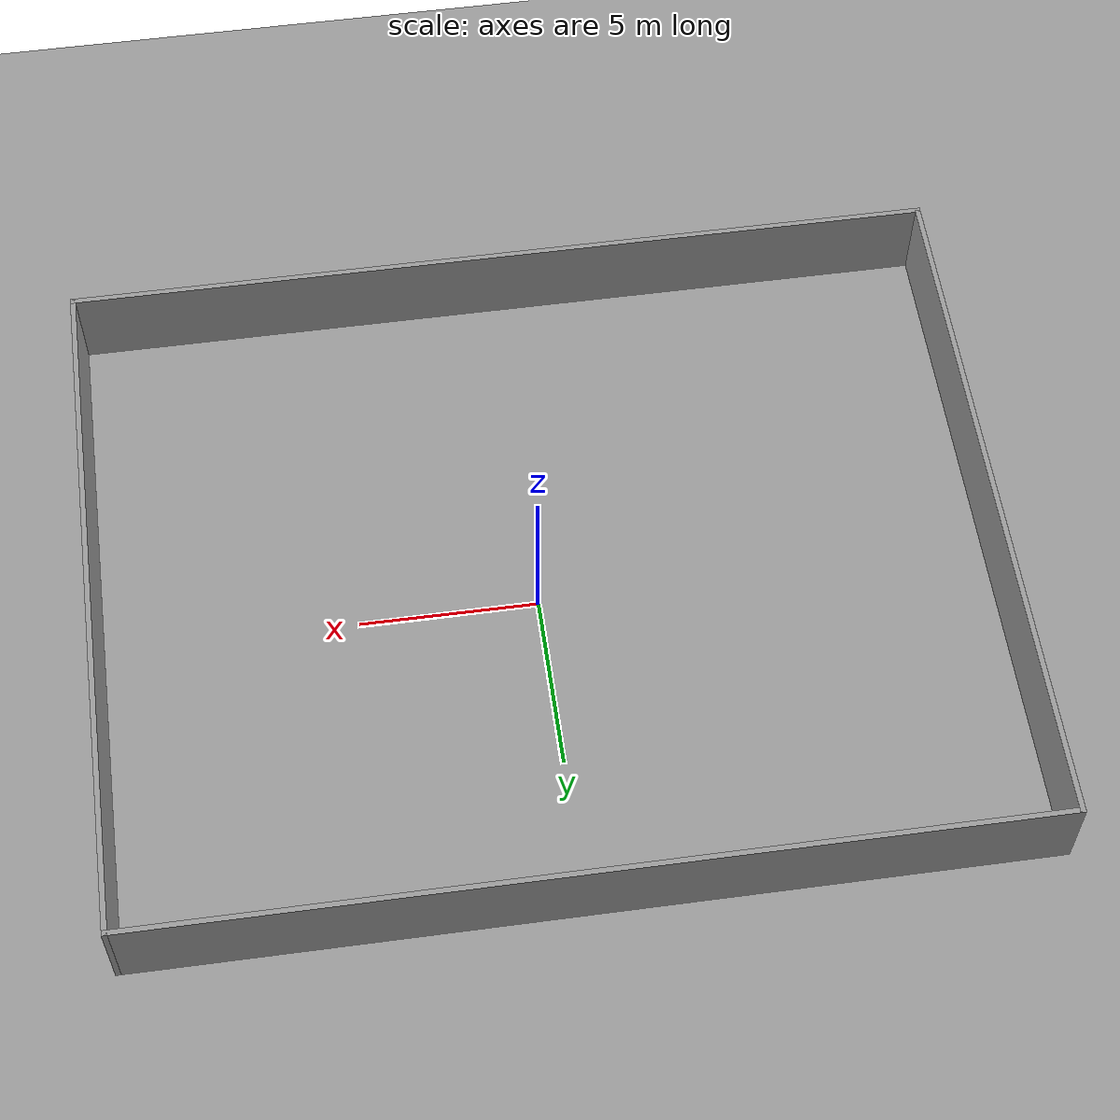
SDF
<sdf version="1.6">
 <world name="default">
  <light name="sun" type="directional">
   <pose>0 0 10 0 -0 0</pose>
   <diffuse>0.8 0.8 0.8 1</diffuse>
   <specular>0.2 0.2 0.2 1</specular>
   <attenuation>
    <range>1000</range>
    <constant>0.9</constant>
    <linear>0.01</linear>
    <quadratic>0.001</quadratic>
   </attenuation>
   <direction>0.5 0.1 -0.9</direction>
  </light>
  <scene><ambient>0.4 0.4 0.4 1</ambient><background>0.7 0.7 0.7 1</background><shadows>1</shadows></scene>
  <physics name="default_physics" default="0" type="ode">
   <max_step_size>0.01</max_step_size>
   <real_time_factor>1</real_time_factor>
   <real_time_update_rate>100</real_time_update_rate>
  </physics>
  <model name="ground_plane_0">
   <static>1</static>
   <link name="link">
    <collision name="collision">
     <geometry><plane><normal>0 0 1</normal><size>100 100</size></plane></geometry>
     <surface><friction><ode><mu>100</mu><mu2>50</mu2></ode></friction></surface>
    </collision>
    <visual name="visual">
     <cast_shadows>0</cast_shadows>
     <geometry><plane><normal>0 0 1</normal><size>100 100</size></plane></geometry>
     <material>
      <script><uri>file://media/materials/scripts/gazebo.material</uri><name>Gazebo/Grey</name></script>
     </material>
    </visual>
    <velocity_decay><linear>0</linear><angular>0</angular></velocity_decay>
   </link>
   <pose>0.497681 0 0 0 -0 0</pose>
  </model>
  <gravity>0 0 -9.8</gravity>
  <magnetic_field>6e-06 2.3e-05 -4.2e-05</magnetic_field>
  <atmosphere type="adiabatic"/>
  <spherical_coordinates>
   <surface_model>EARTH_WGS84</surface_model>
   <latitude_deg>0</latitude_deg>
   <longitude_deg>0</longitude_deg>
   <elevation>0</elevation>
   <heading_deg>0</heading_deg>
  </spherical_coordinates>
  <model name="EmptyWorld">
   <pose>-0.295158 -0.520296 0 0 -0 0</pose>
   <link name="Wall_12">
    <collision name="Wall_12_Collision">
     <geometry><box><size>25 0.15 2.5</size></box></geometry>
     <pose>0 0 1.25 0 -0 0</pose>
    </collision>
    <visual name="Wall_12_Visual">
     <pose>0 0 1.25 0 -0 0</pose>
     <geometry><box><size>25 0.15 2.5</size></box></geometry>
     <material>
      <script><uri>file://media/materials/scripts/gazebo.material</uri><name>Gazebo/Grey</name></script>
      <ambient>1 1 1 1</ambient>
     </material>
    </visual>
    <pose>0 -9.925 0 0 -0 0</pose>
   </link>
   <link name="Wall_13">
    <collision name="Wall_13_Collision">
     <geometry><box><size>20 0.15 2.5</size></box></geometry>
     <pose>0 0 1.25 0 -0 0</pose>
    </collision>
    <visual name="Wall_13_Visual">
     <pose>0 0 1.25 0 -0 0</pose>
     <geometry><box><size>20 0.15 2.5</size></box></geometry>
     <material>
      <script><uri>file://media/materials/scripts/gazebo.material</uri><name>Gazebo/Grey</name></script>
      <ambient>1 1 1 1</ambient>
     </material>
    </visual>
    <pose>12.425 0 0 0 -0 1.5708</pose>
   </link>
   <link name="Wall_14">
    <collision name="Wall_14_Collision">
     <geometry><box><size>25 0.15 2.5</size></box></geometry>
     <pose>0 0 1.25 0 -0 0</pose>
    </collision>
    <visual name="Wall_14_Visual">
     <pose>0 0 1.25 0 -0 0</pose>
     <geometry><box><size>25 0.15 2.5</size></box></geometry>
     <material>
      <script><uri>file://media/materials/scripts/gazebo.material</uri><name>Gazebo/Grey</name></script>
      <ambient>1 1 1 1</ambient>
     </material>
    </visual>
    <pose>0 9.925 0 0 -0 3.14159</pose>
   </link>
   <link name="Wall_15">
    <collision name="Wall_15_Collision">
     <geometry><box><size>20 0.15 2.5</size></box></geometry>
     <pose>0 0 1.25 0 -0 0</pose>
    </collision>
    <visual name="Wall_15_Visual">
     <pose>0 0 1.25 0 -0 0</pose>
     <geometry><box><size>20 0.15 2.5</size></box></geometry>
     <material>
      <script><uri>file://media/materials/scripts/gazebo.material</uri><name>Gazebo/Grey</name></script>
      <ambient>1 1 1 1</ambient>
     </material>
    </visual>
    <pose>-12.425 0 0 0 0 -1.5708</pose>
   </link>
   <static>1</static>
  </model>
 </world>
</sdf>
